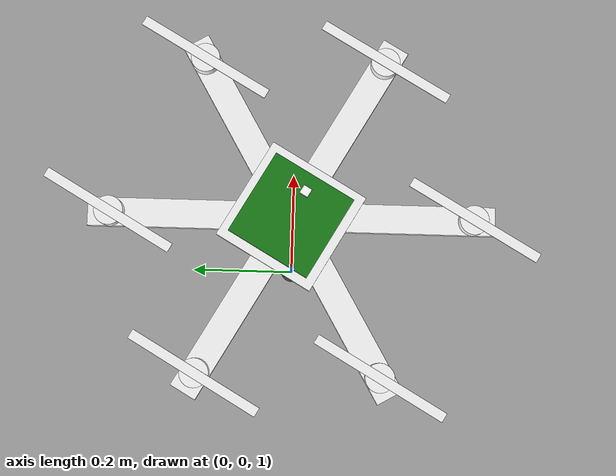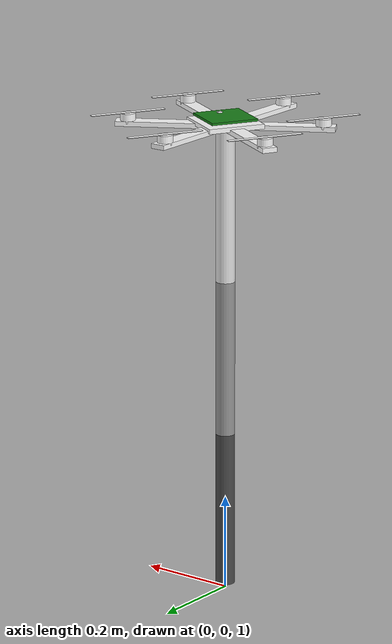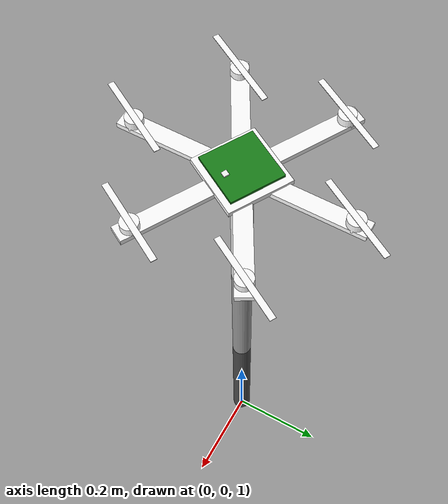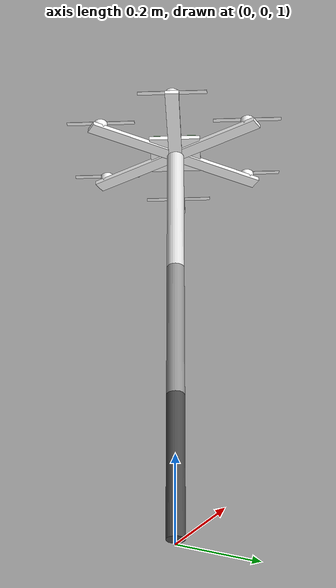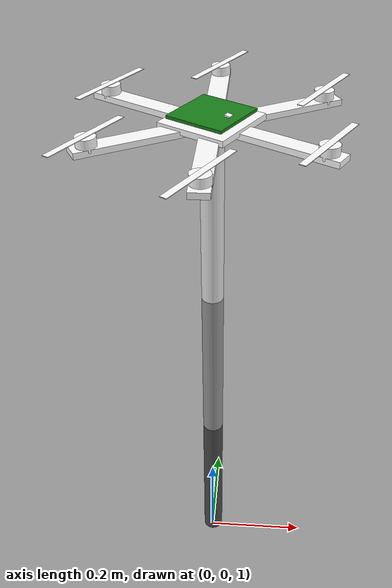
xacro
<robot name="base_link1_respondable">
    <link name="robot_base">
        <inertial>
            <origin xyz="0.000000 0.000000 2.000000" rpy="-3.141593 3.141593 -3.141593" />
            <inertia iyy="0.18" ixx="0.18" ixy="0.0" iyz="0.0" ixz="0.0" izz="0.3" />
            <mass value="4.9982" />
        </inertial>
        <collision name="base_link1_respondable">
            <origin xyz="0.000000 0.000000 2.000000" rpy="-3.141593 3.141593 -3.141593" />
            <geometry>
                <box size="0.031500 0.450000 0.010000" />
            </geometry>
        </collision>
        <visual name="base_link1_visual">
            <origin xyz="0.000000 0.000000 2.000000" rpy="-3.141593 3.141593 -3.141593" />
            <geometry>
                <box size="0.031500 0.450000 0.010000" />
            </geometry>
            <material name="base_link1_visual_material">
                <color rgba="1.000000 1.000000 1.000000 1.0" />
            </material>
        </visual>
    </link>
    <joint type="fixed" name="center">
        <axis xyz="0 0 1" />
        <parent link="robot_base" />
        <child link="base_link2_respondable" />
        <origin xyz="0.000000 0.000000 2.000000" rpy="-3.141593 3.141593 2.617994" />
    </joint>
    <link name="base_link2_respondable">
        <inertial>
            <origin xyz="0.000000 0.000000 0.000000" rpy="-3.141593 3.141593 2.617994" />
            <inertia iyy="0.0001" ixx="0.0001" ixy="0.0" iyz="0.0" ixz="0.0" izz="0.0001" />
            <mass value="0.0001" />
        </inertial>
        <collision name="base_link2_respondable">
            <origin xyz="0.000000 0.000000 0.000000" rpy="-3.141593 3.141593 2.617994" />
            <geometry>
                <box size="0.031500 0.450000 0.010000" />
            </geometry>
        </collision>
        <visual name="base_link2_visual">
            <origin xyz="0.000000 0.000000 0.000000" rpy="-3.141593 3.141593 2.617994" />
            <geometry>
                <box size="0.031500 0.450000 0.010000" />
            </geometry>
            <material name="base_link2_visual_material">
                <color rgba="1.000000 1.000000 1.000000 1.0" />
            </material>
        </visual>
    </link>
    <joint type="fixed" name="center2">
        <axis xyz="0 0 1" />
        <parent link="base_link2_respondable" />
        <child link="base_link3_respondable" />
        <origin xyz="0.000000 0.000000 0.000000" rpy="-3.141593 3.141593 -3.141593" />
    </joint>
    <link name="base_link3_respondable">
        <inertial>
            <origin xyz="0.000000 0.000000 0.000000" rpy="-3.141593 3.141593 -1.570796" />
            <inertia iyy="0.0001" ixx="0.0001" ixy="0.0" iyz="0.0" ixz="0.0" izz="0.0001" />
            <mass value="0.0001" />
        </inertial>
        <collision name="base_link3_respondable">
            <origin xyz="0.000000 0.000000 0.000000" rpy="-3.141593 3.141593 -1.570796" />
            <geometry>
                <box size="0.031500 0.450000 0.010000" />
            </geometry>
        </collision>
        <visual name="base_link3_visual">
            <origin xyz="0.000000 0.000000 0.000000" rpy="-3.141593 3.141593 -1.570796" />
            <geometry>
                <box size="0.031500 0.450000 0.010000" />
            </geometry>
            <material name="base_link3_visual_material">
                <color rgba="1.000000 1.000000 1.000000 1.0" />
            </material>
        </visual>
    </link>
    <joint type="continuous" name="joint_left_prop">
        <axis xyz="0 0 1" />
        <parent link="base_link3_respondable" />
        <child link="prop_left_respondable" />
        <origin xyz="-0.200000 -0.000000 0.021000" rpy="-3.141593 3.141593 -3.141593" />
    </joint>
    <link name="prop_left_respondable">
        <inertial>
            <origin xyz="0.000000 0.000000 0.000000" rpy="-3.141593 3.141593 -3.141593" />
            <inertia iyy="0.0001" ixx="0.0001" ixy="0.0" iyz="0.0" ixz="0.0" izz="0.0001" />
            <mass value="0.0001" />
        </inertial>
        <collision name="prop_left_respondable">
            <origin xyz="0.000000 0.000000 0.000000" rpy="-3.141593 3.141593 -3.141593" />
            <geometry>
                <box size="0.011007 0.160000 0.001000" />
            </geometry>
        </collision>
        <visual name="prop_left_visual">
            <origin xyz="0.000000 0.000000 0.000000" rpy="-3.141593 3.141593 -3.141593" />
            <geometry>
                <box size="0.011007 0.160000 0.001000" />
            </geometry>
            <material name="prop_left_visual_material">
                <color rgba="1.000000 1.000000 1.000000 1.0" />
            </material>
        </visual>
    </link>
    <joint type="continuous" name="joint_right_prop">
        <axis xyz="0 0 1" />
        <parent link="base_link3_respondable" />
        <child link="prop_right_respondable" />
        <origin xyz="0.200000 -0.000000 0.021000" rpy="-3.141593 3.141593 -3.141593" />
    </joint>
    <link name="prop_right_respondable">
        <inertial>
            <origin xyz="0.000000 0.000000 0.000000" rpy="-3.141593 3.141593 -3.141593" />
            <inertia iyy="0.0001" ixx="0.0001" ixy="0.0" iyz="0.0" ixz="0.0" izz="0.0001" />
            <mass value="0.0001" />
        </inertial>
        <collision name="prop_right_respondable">
            <origin xyz="0.000000 0.000000 0.000000" rpy="-3.141593 3.141593 -3.141593" />
            <geometry>
                <box size="0.011007 0.160000 0.001000" />
            </geometry>
        </collision>
        <visual name="prop_right_visual">
            <origin xyz="0.000000 0.000000 0.000000" rpy="-3.141593 3.141593 -3.141593" />
            <geometry>
                <box size="0.011007 0.160000 0.001000" />
            </geometry>
            <material name="prop_right_visual_material">
                <color rgba="1.000000 1.000000 1.000000 1.0" />
            </material>
        </visual>
    </link>
    <joint type="continuous" name="joint_front_right_prop">
        <axis xyz="0 0 1" />
        <parent link="base_link2_respondable" />
        <child link="prop_front_right_respondable" />
        <origin xyz="0.100000 0.173200 0.021000" rpy="-3.141593 3.141593 -3.141593" />
    </joint>
    <link name="prop_front_right_respondable">
        <inertial>
            <origin xyz="0.000000 0.000000 0.000000" rpy="-3.141593 3.141593 -3.141593" />
            <inertia iyy="0.0001" ixx="0.0001" ixy="0.0" iyz="0.0" ixz="0.0" izz="0.0001" />
            <mass value="0.0001" />
        </inertial>
        <collision name="prop_front_right_respondable">
            <origin xyz="0.000000 0.000000 0.000000" rpy="-3.141593 3.141593 -3.141593" />
            <geometry>
                <box size="0.011007 0.160000 0.001000" />
            </geometry>
        </collision>
        <visual name="prop_front_right_visual">
            <origin xyz="0.000000 0.000000 0.000000" rpy="-3.141593 3.141593 -3.141593" />
            <geometry>
                <box size="0.011007 0.160000 0.001000" />
            </geometry>
            <material name="prop_front_right_visual_material">
                <color rgba="1.000000 1.000000 1.000000 1.0" />
            </material>
        </visual>
    </link>
    <joint type="continuous" name="joint_back_right_prop">
        <axis xyz="0 0 1" />
        <parent link="base_link2_respondable" />
        <child link="prop_back_right_respondable" />
        <origin xyz="0.100001 -0.173200 0.021000" rpy="-3.141593 3.141593 -3.141593" />
    </joint>
    <link name="prop_back_right_respondable">
        <inertial>
            <origin xyz="0.000000 -0.000000 0.000000" rpy="-3.141593 3.141593 -3.141593" />
            <inertia iyy="0.0001" ixx="0.0001" ixy="0.0" iyz="0.0" ixz="0.0" izz="0.0001" />
            <mass value="0.0001" />
        </inertial>
        <collision name="prop_back_right_respondable">
            <origin xyz="0.000000 -0.000000 0.000000" rpy="-3.141593 3.141593 -3.141593" />
            <geometry>
                <box size="0.011007 0.160000 0.001000" />
            </geometry>
        </collision>
        <visual name="prop_back_left_visual">
            <origin xyz="0.000000 -0.000000 0.000000" rpy="-3.141593 3.141593 -3.141593" />
            <geometry>
                <box size="0.011007 0.160000 0.001000" />
            </geometry>
            <material name="prop_back_left_visual_material">
                <color rgba="1.000000 1.000000 1.000000 1.0" />
            </material>
        </visual>
    </link>
    <joint type="fixed" name="joint_plate1_frame">
        <axis xyz="0 0 1" />
        <parent link="base_link2_respondable" />
        <child link="plate1_respondable" />
        <origin xyz="0.000000 0.000000 0.005000" rpy="-3.141593 3.141593 -3.141593" />
    </joint>
    <link name="plate1_respondable">
        <inertial>
            <origin xyz="0.000000 0.000000 0.000000" rpy="-3.141593 3.141593 -3.141593" />
            <inertia iyy="0.0001" ixx="0.0001" ixy="0.0" iyz="0.0" ixz="0.0" izz="0.0001" />
            <mass value="0.0001" />
        </inertial>
        <collision name="plate1_respondable">
            <origin xyz="0.000000 0.000000 0.000000" rpy="-3.141593 3.141593 -3.141593" />
            <geometry>
                <box size="0.120000 0.120000 0.010000" />
            </geometry>
        </collision>
        <visual name="plate1_visual">
            <origin xyz="0.000000 0.000000 0.000000" rpy="-3.141593 3.141593 -3.141593" />
            <geometry>
                <box size="0.120000 0.120000 0.010000" />
            </geometry>
            <material name="plate1_visual_material">
                <color rgba="1.000000 1.000000 1.000000 1.0" />
            </material>
        </visual>
    </link>
    <joint type="fixed" name="joint_plate2_frame">
        <axis xyz="0 0 1" />
        <parent link="plate1_respondable" />
        <child link="plate2_respondable" />
        <origin xyz="0.000000 0.000000 0.007000" rpy="-3.141593 3.141593 -3.141593" />
    </joint>
    <link name="plate2_respondable">
        <inertial>
            <origin xyz="0.000000 0.000000 0.000000" rpy="-3.141593 3.141593 -3.141593" />
            <inertia iyy="0.0001" ixx="0.0001" ixy="0.0" iyz="0.0" ixz="0.0" izz="0.0001" />
            <mass value="0.0001" />
        </inertial>
        <collision name="plate2_respondable">
            <origin xyz="0.000000 0.000000 0.000000" rpy="-3.141593 3.141593 -3.141593" />
            <geometry>
                <box size="0.050000 0.030000 0.005000" />
            </geometry>
        </collision>
        <visual name="plate2_visual">
            <origin xyz="0.000000 0.000000 0.000000" rpy="-3.141593 3.141593 -3.141593" />
            <geometry>
                <box size="0.050000 0.030000 0.005000" />
            </geometry>
            <material name="plate2_visual_material">
                <color rgba="1.000000 1.000000 1.000000 1.0" />
            </material>
        </visual>
    </link>
    <joint type="fixed" name="joint_arduino_frame">
        <axis xyz="0 0 1" />
        <parent link="plate2_respondable" />
        <child link="arduino_respondable" />
        <origin xyz="0.000000 0.000000 0.005000" rpy="-3.141593 3.141593 -3.141593" />
    </joint>
    <link name="arduino_respondable">
        <inertial>
            <origin xyz="0.000000 0.000000 0.000000" rpy="-3.141593 3.141593 -3.141593" />
            <inertia iyy="0.0001" ixx="0.0001" ixy="0.0" iyz="0.0" ixz="0.0" izz="0.0001" />
            <mass value="0.0001" />
        </inertial>
        <collision name="arduino_respondable">
            <origin xyz="0.000000 0.000000 0.000000" rpy="-3.141593 3.141593 -3.141593" />
            <geometry>
                <box size="0.100000 0.100000 0.001000" />
            </geometry>
        </collision>
        <visual name="arduino_visual">
            <origin xyz="0.000000 0.000000 0.000000" rpy="-3.141593 3.141593 -3.141593" />
            <geometry>
                <box size="0.100000 0.100000 0.005000" />
            </geometry>
            <material name="arduino_visual_material">
                <color rgba="0.100000 0.500000 0.100000 1.0" />
            </material>
        </visual>
    </link>
    <joint type="fixed" name="joint_camera_frame">
        <axis xyz="0 0 1" />
        <parent link="plate2_respondable" />
        <child link="camera_link_respondable" />
        <origin xyz="0.030000 0.000000 0.005000" rpy="-3.141593 3.041593 -3.141593" />
    </joint>
    <link name="camera_link_respondable">
        <inertial>
            <origin xyz="0.000000 0.000000 0.000000" rpy="-3.141593 3.141593 -3.141593" />
            <inertia iyy="0.0001" ixx="0.0001" ixy="0.0" iyz="0.0" ixz="0.0" izz="0.0001" />
            <mass value="0.0001" />
        </inertial>
        <collision name="camera_link_respondable">
            <origin xyz="0.000000 0.000000 0.000000" rpy="-3.141593 3.141593 -3.141593" />
            <geometry>
                <box size="0.010000 0.010000 0.010000" />
            </geometry>
        </collision>
        <visual name="camera_link_visual">
            <origin xyz="0.000000 0.000000 0.000000" rpy="-3.141593 3.141593 -3.141593" />
            <geometry>
                <box size="0.010000 0.010000 0.010000" />
            </geometry>
            <material name="camera_link_visual_material">
                <color rgba="1.000000 1.000000 1.000000 1.0" />
            </material>
        </visual>
    </link>
    <joint type="fixed" name="joint_cyl1_frame">
        <axis xyz="0 0 1" />
        <parent link="base_link2_respondable" />
        <child link="cyl1_respondable" />
        <origin xyz="0.100000 0.173200 0.010000" rpy="-3.141593 3.141593 -3.141593" />
    </joint>
    <link name="cyl1_respondable">
        <inertial>
            <origin xyz="0.000000 0.000000 0.000000" rpy="-3.141593 3.141593 -1.570796" />
            <inertia iyy="0.0001" ixx="0.0001" ixy="0.0" iyz="0.0" ixz="0.0" izz="0.0001" />
            <mass value="0.0001" />
        </inertial>
        <collision name="cyl1_respondable">
            <origin xyz="0.000000 0.000000 0.000000" rpy="-3.141593 3.141593 -1.570796" />
            <geometry>
                <cylinder length="0.02" radius="0.016" />
            </geometry>
        </collision>
        <visual name="cyl1_visual">
            <origin xyz="0.000000 0.000000 0.000000" rpy="-3.141593 3.141593 -1.570796" />
            <geometry>
                <cylinder length="0.02" radius="0.016" />
            </geometry>
            <material name="cyl1_visual_material">
                <color rgba="1.000000 1.000000 1.000000 1.0" />
            </material>
        </visual>
    </link>
    <joint type="fixed" name="joint_cyl2_frame">
        <axis xyz="0 0 1" />
        <parent link="base_link2_respondable" />
        <child link="cyl2_respondable" />
        <origin xyz="-0.100000 0.173200 0.010000" rpy="-3.141593 3.141593 -3.141593" />
    </joint>
    <link name="cyl2_respondable">
        <inertial>
            <origin xyz="-0.000000 0.000000 0.000000" rpy="-3.141593 3.141593 -3.141593" />
            <inertia iyy="0.0001" ixx="0.0001" ixy="0.0" iyz="0.0" ixz="0.0" izz="0.0001" />
            <mass value="0.0001" />
        </inertial>
        <collision name="cyl2_respondable">
            <origin xyz="-0.000000 0.000000 0.000000" rpy="-3.141593 3.141593 -3.141593" />
            <geometry>
                <cylinder length="0.02" radius="0.016" />
            </geometry>
        </collision>
        <visual name="cyl2_visual">
            <origin xyz="-0.000000 0.000000 0.000000" rpy="-3.141593 3.141593 -3.141593" />
            <geometry>
                <cylinder length="0.02" radius="0.016" />
            </geometry>
            <material name="cyl2_visual_material">
                <color rgba="1.000000 1.000000 1.000000 1.0" />
            </material>
        </visual>
    </link>
    <joint type="continuous" name="joint_front_left_prop">
        <axis xyz="0 0 1" />
        <parent link="robot_base" />
        <child link="prop_front_left_respondable" />
        <origin xyz="-0.000003 0.199996 2.021000" rpy="-3.141593 3.141593 2.617994" />
    </joint>
    <link name="prop_front_left_respondable">
        <inertial>
            <origin xyz="-0.000000 0.000000 0.000000" rpy="-3.141593 3.141593 -3.141593" />
            <inertia iyy="0.0001" ixx="0.0001" ixy="0.0" iyz="0.0" ixz="0.0" izz="0.0001" />
            <mass value="0.0001" />
        </inertial>
        <collision name="prop_front_left_respondable">
            <origin xyz="-0.000000 0.000000 0.000000" rpy="-3.141593 3.141593 -3.141593" />
            <geometry>
                <box size="0.011007 0.160000 0.001000" />
            </geometry>
        </collision>
        <visual name="prop_front_left_visual">
            <origin xyz="-0.000000 0.000000 0.000000" rpy="-3.141593 3.141593 -3.141593" />
            <geometry>
                <box size="0.011007 0.160000 0.001000" />
            </geometry>
            <material name="prop_front_left_visual_material">
                <color rgba="1.000000 1.000000 1.000000 1.0" />
            </material>
        </visual>
    </link>
    <joint type="continuous" name="joint_back_left_prop">
        <axis xyz="0 0 1" />
        <parent link="robot_base" />
        <child link="prop_back_left_respondable" />
        <origin xyz="-0.173203 -0.099996 2.021000" rpy="-3.141593 3.141593 2.617994" />
    </joint>
    <link name="prop_back_left_respondable">
        <inertial>
            <origin xyz="-0.000000 -0.000000 0.000000" rpy="-3.141593 3.141593 -3.141593" />
            <inertia iyy="0.0001" ixx="0.0001" ixy="0.0" iyz="0.0" ixz="0.0" izz="0.0001" />
            <mass value="0.0001" />
        </inertial>
        <collision name="prop_back_left_respondable">
            <origin xyz="-0.000000 -0.000000 0.000000" rpy="-3.141593 3.141593 -3.141593" />
            <geometry>
                <box size="0.011007 0.160000 0.001000" />
            </geometry>
        </collision>
        <visual name="prop_back_right_visual">
            <origin xyz="-0.000000 -0.000000 0.000000" rpy="-3.141593 3.141593 -3.141593" />
            <geometry>
                <box size="0.011007 0.160000 0.001000" />
            </geometry>
            <material name="prop_back_right_visual_material">
                <color rgba="1.000000 1.000000 1.000000 1.0" />
            </material>
        </visual>
    </link>
    <joint type="fixed" name="joint_cyl3_frame">
        <axis xyz="0 0 1" />
        <parent link="robot_base" />
        <child link="cyl3_respondable" />
        <origin xyz="-0.173203 -0.099996 2.010000" rpy="-3.141593 3.141593 2.617994" />
    </joint>
    <link name="cyl3_respondable">
        <inertial>
            <origin xyz="-0.000000 -0.000000 0.000000" rpy="-3.141593 3.141593 -3.141593" />
            <inertia iyy="0.0001" ixx="0.0001" ixy="0.0" iyz="0.0" ixz="0.0" izz="0.0001" />
            <mass value="0.0001" />
        </inertial>
        <collision name="cyl3_respondable">
            <origin xyz="-0.000000 -0.000000 0.000000" rpy="-3.141593 3.141593 -3.141593" />
            <geometry>
                <cylinder length="0.02" radius="0.016" />
            </geometry>
        </collision>
        <visual name="cyl3_visual">
            <origin xyz="-0.000000 -0.000000 0.000000" rpy="-3.141593 3.141593 -3.141593" />
            <geometry>
                <cylinder length="0.02" radius="0.016" />
            </geometry>
            <material name="cyl3_visual_material">
                <color rgba="1.000000 1.000000 1.000000 1.0" />
            </material>
        </visual>
    </link>
    <joint type="fixed" name="joint_cyl4_frame">
        <axis xyz="0 0 1" />
        <parent link="robot_base" />
        <child link="cyl4_respondable" />
        <origin xyz="0.000003 -0.199996 2.010000" rpy="-3.141593 3.141593 2.617994" />
    </joint>
    <link name="cyl4_respondable">
        <inertial>
            <origin xyz="0.000000 -0.000000 0.000000" rpy="-3.141593 3.141593 -3.141593" />
            <inertia iyy="0.0001" ixx="0.0001" ixy="0.0" iyz="0.0" ixz="0.0" izz="0.0001" />
            <mass value="0.0001" />
        </inertial>
        <collision name="cyl4_respondable">
            <origin xyz="0.000000 -0.000000 0.000000" rpy="-3.141593 3.141593 -3.141593" />
            <geometry>
                <cylinder length="0.02" radius="0.016" />
            </geometry>
        </collision>
        <visual name="cyl4_visual">
            <origin xyz="0.000000 -0.000000 0.000000" rpy="-3.141593 3.141593 -3.141593" />
            <geometry>
                <cylinder length="0.02" radius="0.016" />
            </geometry>
            <material name="cyl4_visual_material">
                <color rgba="1.000000 1.000000 1.000000 1.0" />
            </material>
        </visual>
    </link>
    <joint type="fixed" name="joint_cyl5_frame">
        <axis xyz="0 0 1" />
        <parent link="robot_base" />
        <child link="cyl5_respondable" />
        <origin xyz="0.173205 -0.100000 2.010000" rpy="-3.141593 3.141593 2.617994" />
    </joint>
    <link name="cyl5_respondable">
        <inertial>
            <origin xyz="0.000000 0.000000 0.000000" rpy="-3.141593 3.141593 -3.141593" />
            <inertia iyy="0.0001" ixx="0.0001" ixy="0.0" iyz="0.0" ixz="0.0" izz="0.0001" />
            <mass value="0.0001" />
        </inertial>
        <collision name="cyl5_respondable">
            <origin xyz="0.000000 0.000000 0.000000" rpy="-3.141593 3.141593 -3.141593" />
            <geometry>
                <cylinder length="0.02" radius="0.016" />
            </geometry>
        </collision>
        <visual name="cyl5_visual">
            <origin xyz="0.000000 0.000000 0.000000" rpy="-3.141593 3.141593 -3.141593" />
            <geometry>
                <cylinder length="0.02" radius="0.016" />
            </geometry>
            <material name="cyl5_visual_material">
                <color rgba="1.000000 1.000000 1.000000 1.0" />
            </material>
        </visual>
    </link>
    <joint type="fixed" name="joint_cyl6_frame">
        <axis xyz="0 0 1" />
        <parent link="robot_base" />
        <child link="cyl6_respondable" />
        <origin xyz="-0.173205 0.100000 2.010000" rpy="-3.141593 3.141593 2.617994" />
    </joint>
    <link name="cyl6_respondable">
        <inertial>
            <origin xyz="-0.000000 0.000000 0.000000" rpy="-3.141593 3.141593 -3.141593" />
            <inertia iyy="0.0001" ixx="0.0001" ixy="0.0" iyz="0.0" ixz="0.0" izz="0.0001" />
            <mass value="0.0001" />
        </inertial>
        <collision name="cyl6_respondable">
            <origin xyz="-0.000000 0.000000 0.000000" rpy="-3.141593 3.141593 -3.141593" />
            <geometry>
                <cylinder length="0.02" radius="0.016" />
            </geometry>
        </collision>
        <visual name="cyl6_visual">
            <origin xyz="-0.000000 0.000000 0.000000" rpy="-3.141593 3.141593 -3.141593" />
            <geometry>
                <cylinder length="0.02" radius="0.016" />
            </geometry>
            <material name="cyl6_visual_material">
                <color rgba="1.000000 1.000000 1.000000 1.0" />
            </material>
        </visual>
    </link>
    <joint type="revolute" name="Joint_1">
        <axis xyz="0 0 1" />
        <parent link="robot_base" />
        <child link="Link_1" />
        <origin xyz="0.000000 0.000000 2.000000" rpy="-1.570797 -0.000868 0.000000" />
    <limit lower="-3.14159" upper="3.14159" effort="6.0" velocity="10.0" /><dynamics damping="0.05" friction="0.0" /></joint>
    <link name="Link_1">
        <inertial>
            <origin xyz="0.000000 0.165000 0.000000" rpy="-1.570796 3.141593 -3.141593" />
            <inertia iyy="0.0015" ixx="0.0015" ixy="0.0" iyz="0.0" ixz="0.0" izz="0.000055" />
            <mass value="0.166" />
        </inertial>
        <collision name="Link_1">
            <origin xyz="0.000000 0.165000 0.000000" rpy="-1.570796 3.141593 -3.141593" />
            <geometry>
                <cylinder length="0.33" radius="0.02" />
            </geometry>
        </collision>
        <visual name="Link_1">
            <origin xyz="0.000000 0.165000 0.000000" rpy="-1.570796 3.141593 -3.141593" />
            <geometry>
                <cylinder length="0.33" radius="0.02" />
            </geometry>
            <material name="Link_1_material">
                <color rgba="0.900000 0.900000 0.900000 1.0" />
            </material>
        </visual>
    </link>
    <joint type="revolute" name="Joint_2">
        <axis xyz="0 0 1" />
        <parent link="Link_1" />
        <child link="Link_2" />
        <origin xyz="0.000000 0.330000 0.000000" rpy="0.000000 -0.000000 0.000003" />
    <limit lower="-3.14159" upper="3.14159" effort="6.0" velocity="10.0" /><dynamics damping="0.05" friction="0.0" /></joint>
    <link name="Link_2">
        <inertial>
            <origin xyz="0.000000 0.165000 0.000000" rpy="-1.570796 3.141593 -3.141593" />
            <inertia iyy="0.0015" ixx="0.0015" ixy="0.0" iyz="0.0" ixz="0.0" izz="0.000055" />
            <mass value="0.166" />
        </inertial>
        <collision name="Link_2">
            <origin xyz="0.000000 0.165000 0.000000" rpy="-1.570796 3.141593 -3.141593" />
            <geometry>
                <cylinder length="0.33" radius="0.02" />
            </geometry>
        </collision>
        <visual name="Link_2">
            <origin xyz="0.000000 0.165000 0.000000" rpy="-1.570796 3.141593 -3.141593" />
            <geometry>
                <cylinder length="0.33" radius="0.02" />
            </geometry>
            <material name="Link_2_material">
                <color rgba="0.600000 0.600000 0.600000 1.0" />
            </material>
        </visual>
    </link>
    <joint type="revolute" name="Joint_3">
        <axis xyz="0 0 1" />
        <parent link="Link_2" />
        <child link="Link_3" />
        <origin xyz="0.000000 0.330000 0.000000" rpy="0.000000 -0.000000 0.000000" />
    <limit lower="-3.14159" upper="3.14159" effort="6.0" velocity="10.0" /><dynamics damping="0.05" friction="0.0" /></joint>
    <link name="Link_3">
        <inertial>
            <origin xyz="0.000000 0.165000 0.000000" rpy="-1.570796 3.141593 -3.141593" />
            <inertia iyy="0.0015" ixx="0.0015" ixy="0.0" iyz="0.0" ixz="0.0" izz="0.000055" />
            <mass value="0.166" />
        </inertial>
        <collision name="Link_3">
            <origin xyz="0.000000 0.165000 0.000000" rpy="-1.570796 3.141593 -3.141593" />
            <geometry>
                <cylinder length="0.33" radius="0.02" />
            </geometry>
        </collision>
        <visual name="Link_3">
            <origin xyz="0.000000 0.165000 0.000000" rpy="-1.570796 3.141593 -3.141593" />
            <geometry>
                <cylinder length="0.33" radius="0.02" />
            </geometry>
            <material name="Link_3_material">
                <color rgba="0.300000 0.300000 0.300000 1.0" />
            </material>
        </visual>
    </link>
<gazebo>
    <plugin filename="libignition-gazebo-apply-link-wrench-system.so" name="ignition::gazebo::systems::ApplyLinkWrench" />
    <plugin filename="libHexacopterRotorPlugin.so" name="hexacopter_control::HexacopterRotorPlugin">
      <base_link>robot_base</base_link>
      <thrust_coefficient>2.772e-5</thrust_coefficient>
      <moment_coefficient>5.544e-7</moment_coefficient>
      <max_omega>900.0</max_omega>
    </plugin>
  </gazebo>
</robot>
